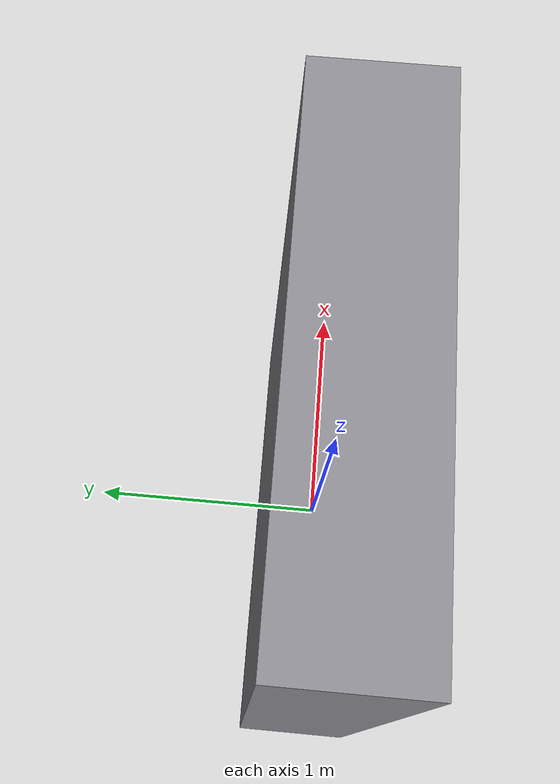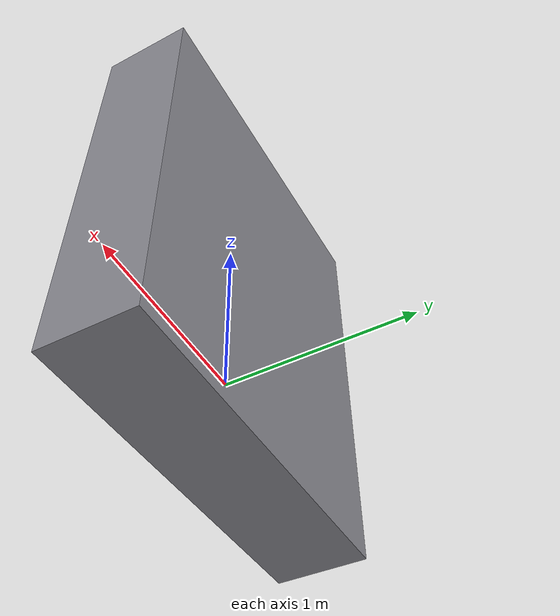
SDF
<?xml version="1.0" ?>
<sdf version="1.6">
  <model name="placard">
    <pose>0 0 1 0 0 0</pose>
    <!-- 仅保留立柱；展示板由 dock_2022 上 tag_visual 二维码平面担任 -->
    <link name="link">
      <collision name="collision_base">
        <pose>0 0 -0.336 0 0 0</pose>
        <geometry>
          <box>
            <size>2.0 0.5 2.328</size>
          </box>
        </geometry>
      </collision>

      <visual name="post_visual">
        <pose>0 0 -0.336 0 0 0</pose>
        <geometry>
          <box>
            <size>2.0 0.5 2.328</size>
          </box>
        </geometry>
        <material>
          <ambient>0.45 0.45 0.48 1</ambient>
          <diffuse>0.55 0.55 0.58 1</diffuse>
        </material>
      </visual>
    </link>
  </model>
</sdf>
